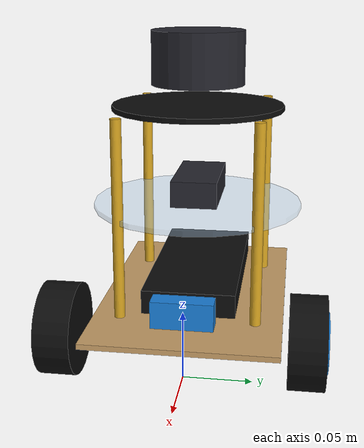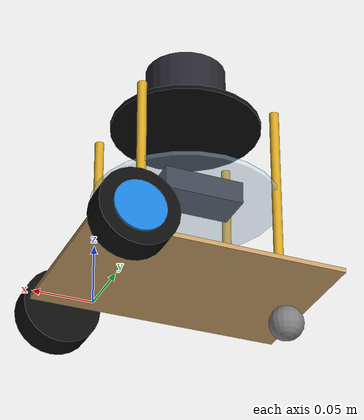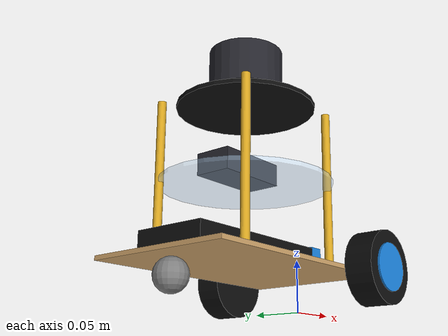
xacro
<?xml version="1.0"?>
<robot xmlns:xacro="http://www.ros.org/wiki/xacro" name="lidar_robot">

  <!-- measured values -->
  <xacro:property name="wheel_sep" value="0.175"/>
  <xacro:property name="wheel_radius" value="0.0335"/>
  <xacro:property name="lidar_x" value="-0.08"/>
  <xacro:property name="lidar_y" value="0.0"/>
  <xacro:property name="lidar_height_above_ground" value="0.22"/>

  <!-- estimated values (replace after measuring) -->
  <xacro:property name="wheel_width" value="0.026"/>
  <xacro:property name="wheel_mass" value="0.1"/>
  <xacro:property name="body_mass" value="1.2"/>

  <xacro:property name="plate_cx" value="-0.08"/>
  <xacro:property name="bottom_length" value="0.22"/>
  <xacro:property name="bottom_width" value="0.14"/>
  <xacro:property name="bottom_z" value="0.0"/>
  <xacro:property name="plate_thick" value="0.004"/>

  <xacro:property name="mid_radius" value="0.08"/>
  <xacro:property name="mid_z" value="0.075"/>
  <xacro:property name="top_radius" value="0.065"/>
  <xacro:property name="top_z" value="0.15"/>
  <xacro:property name="standoff_len" value="0.15"/>

  <xacro:property name="bank_x" value="-0.10"/>
  <xacro:property name="lipo_x" value="-0.09"/>

  <xacro:property name="caster_radius" value="0.015"/>
  <xacro:property name="caster_x" value="-0.17"/>

  <xacro:property name="lidar_radius" value="0.035"/>
  <xacro:property name="lidar_height" value="0.04"/>

  <material name="wood"><color rgba="0.78 0.62 0.40 1"/></material>
  <material name="clear"><color rgba="0.75 0.88 1.0 0.4"/></material>
  <material name="black"><color rgba="0.05 0.05 0.05 1"/></material>
  <material name="dark"><color rgba="0.15 0.15 0.18 1"/></material>
  <material name="gold"><color rgba="0.85 0.65 0.13 1"/></material>
  <material name="grey"><color rgba="0.5 0.5 0.5 1"/></material>
  <material name="red"><color rgba="0.8 0.1 0.1 1"/></material>
  <material name="blue"><color rgba="0.1 0.5 0.85 1"/></material>

  <xacro:macro name="standoff" params="x y">
    <visual>
      <origin xyz="${x} ${y} ${standoff_len/2}" rpy="0 0 0"/>
      <geometry><cylinder radius="0.004" length="${standoff_len}"/></geometry>
      <material name="gold"/>
    </visual>
  </xacro:macro>

  <link name="base_footprint"/>

  <joint name="base_joint" type="fixed">
    <parent link="base_footprint"/>
    <child link="base_link"/>
    <origin xyz="0 0 ${wheel_radius}" rpy="0 0 0"/>
  </joint>

  <link name="base_link">

    <!-- bottom plate -->
    <visual>
      <origin xyz="${plate_cx} 0 ${bottom_z}" rpy="0 0 0"/>
      <geometry><box size="${bottom_length} ${bottom_width} ${plate_thick}"/></geometry>
      <material name="wood"/>
    </visual>

    <!-- power bank on bottom plate -->
    <visual>
      <origin xyz="${bank_x} 0 0.012" rpy="0 0 0"/>
      <geometry><box size="0.15 0.07 0.018"/></geometry>
      <material name="black"/>
    </visual>

    <!-- standoffs -->
    <xacro:standoff x="${plate_cx + 0.06}" y="0.05"/>
    <xacro:standoff x="${plate_cx + 0.06}" y="-0.05"/>
    <xacro:standoff x="${plate_cx - 0.06}" y="0.05"/>
    <xacro:standoff x="${plate_cx - 0.06}" y="-0.05"/>

    <!-- middle round clear plate -->
    <visual>
      <origin xyz="${plate_cx} 0 ${mid_z}" rpy="0 0 0"/>
      <geometry><cylinder radius="${mid_radius}" length="${plate_thick}"/></geometry>
      <material name="clear"/>
    </visual>

    <!-- battery on middle plate -->
    <visual>
      <origin xyz="${lipo_x} 0 ${mid_z + 0.012}" rpy="0 0 0"/>
      <geometry><box size="0.07 0.035 0.02"/></geometry>
      <material name="dark"/>
    </visual>

    <!-- top plate (lidar mount) -->
    <visual>
      <origin xyz="${plate_cx} 0 ${top_z}" rpy="0 0 0"/>
      <geometry><cylinder radius="${top_radius}" length="${plate_thick}"/></geometry>
      <material name="black"/>
    </visual>

    <collision>
      <origin xyz="${plate_cx} 0 ${bottom_z}" rpy="0 0 0"/>
      <geometry><box size="${bottom_length} ${bottom_width} ${plate_thick}"/></geometry>
    </collision>

    <inertial>
      <origin xyz="${plate_cx} 0 0.03" rpy="0 0 0"/>
      <mass value="${body_mass}"/>
      <inertia
        ixx="${body_mass/12*(bottom_width*bottom_width + 0.02)}" ixy="0" ixz="0"
        iyy="${body_mass/12*(bottom_length*bottom_length + 0.02)}" iyz="0"
        izz="${body_mass/12*(bottom_length*bottom_length + bottom_width*bottom_width)}"/>
    </inertial>
  </link>

  <xacro:macro name="wheel" params="name y s">
    <link name="${name}_wheel_link">
      <visual>
        <origin xyz="0 0 0" rpy="${pi/2} 0 0"/>
        <geometry><cylinder radius="${wheel_radius}" length="${wheel_width}"/></geometry>
        <material name="black"/>
      </visual>
      <visual>
        <origin xyz="0 ${s*0.0135} 0" rpy="${pi/2} 0 0"/>
        <geometry><cylinder radius="${wheel_radius*0.65}" length="0.002"/></geometry>
        <material name="blue"/>
      </visual>
      <collision>
        <origin xyz="0 0 0" rpy="${pi/2} 0 0"/>
        <geometry><cylinder radius="${wheel_radius}" length="${wheel_width}"/></geometry>
      </collision>
      <inertial>
        <mass value="${wheel_mass}"/>
        <inertia
          ixx="${wheel_mass/12*(3*wheel_radius*wheel_radius + wheel_width*wheel_width)}" ixy="0" ixz="0"
          iyy="${wheel_mass*wheel_radius*wheel_radius/2}" iyz="0"
          izz="${wheel_mass/12*(3*wheel_radius*wheel_radius + wheel_width*wheel_width)}"/>
      </inertial>
    </link>
    <joint name="${name}_wheel_joint" type="continuous">
      <parent link="base_link"/>
      <child link="${name}_wheel_link"/>
      <origin xyz="0 ${y} 0" rpy="0 0 0"/>
      <axis xyz="0 1 0"/>
    </joint>
  </xacro:macro>

  <xacro:wheel name="left" y="${wheel_sep/2}" s="1"/>
  <xacro:wheel name="right" y="${-wheel_sep/2}" s="-1"/>

  <link name="caster_link">
    <visual>
      <geometry><sphere radius="${caster_radius}"/></geometry>
      <material name="grey"/>
    </visual>
    <collision>
      <geometry><sphere radius="${caster_radius}"/></geometry>
    </collision>
    <inertial>
      <mass value="0.05"/>
      <inertia ixx="0.00001" ixy="0" ixz="0" iyy="0.00001" iyz="0" izz="0.00001"/>
    </inertial>
  </link>

  <joint name="caster_joint" type="fixed">
    <parent link="base_link"/>
    <child link="caster_link"/>
    <origin xyz="${caster_x} 0 ${-(wheel_radius - caster_radius)}" rpy="0 0 0"/>
  </joint>

  <link name="lidar_link">
    <visual>
      <geometry><cylinder radius="${lidar_radius}" length="${lidar_height}"/></geometry>
      <material name="dark"/>
    </visual>
    <collision>
      <geometry><cylinder radius="${lidar_radius}" length="${lidar_height}"/></geometry>
    </collision>
    <inertial>
      <mass value="0.17"/>
      <inertia ixx="0.0001" ixy="0" ixz="0" iyy="0.0001" iyz="0" izz="0.0001"/>
    </inertial>
  </link>

  <joint name="lidar_joint" type="fixed">
    <parent link="base_link"/>
    <child link="lidar_link"/>
    <origin xyz="${lidar_x} ${lidar_y} ${lidar_height_above_ground - wheel_radius}" rpy="0 0 ${pi}"/>
  </joint>

  <link name="imu_link">
    <visual>
      <geometry><box size="0.026 0.018 0.004"/></geometry>
      <material name="red"/>
    </visual>
  </link>

  <joint name="imu_joint" type="fixed">
    <parent link="base_link"/>
    <child link="imu_link"/>
    <origin xyz="-0.05 0 0.0165" rpy="0 0 ${-pi/2}"/>
  </joint>

  <link name="sonar_link">
    <visual>
      <geometry><box size="0.015 0.045 0.02"/></geometry>
      <material name="blue"/>
    </visual>
  </link>

  <joint name="sonar_joint" type="fixed">
    <parent link="base_link"/>
    <child link="sonar_link"/>
    <origin xyz="0 0 0.0165" rpy="0 0 0"/>
  </joint>

</robot>
